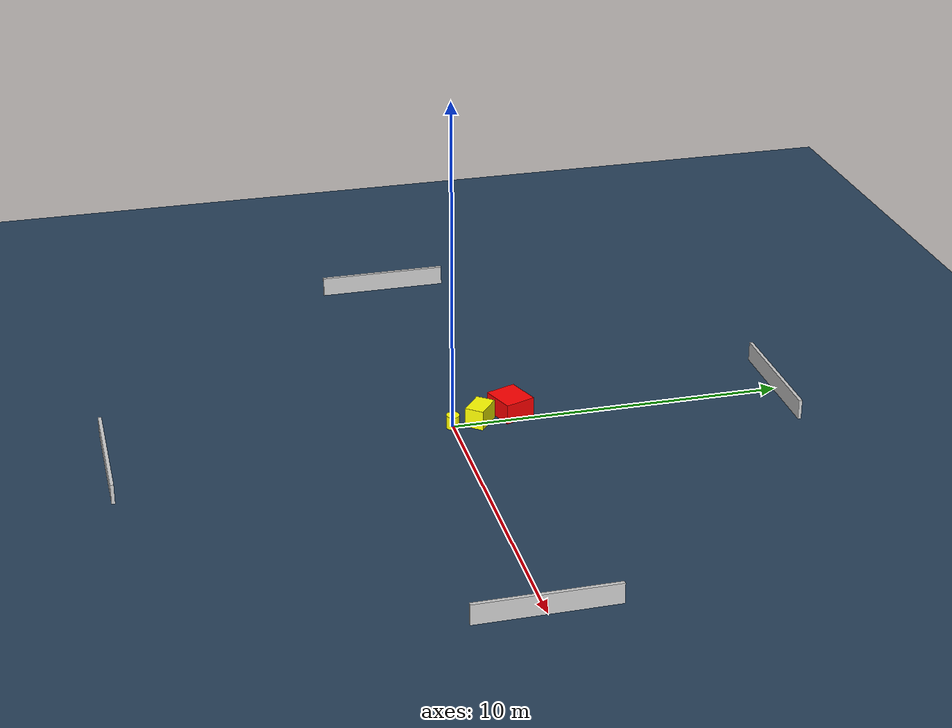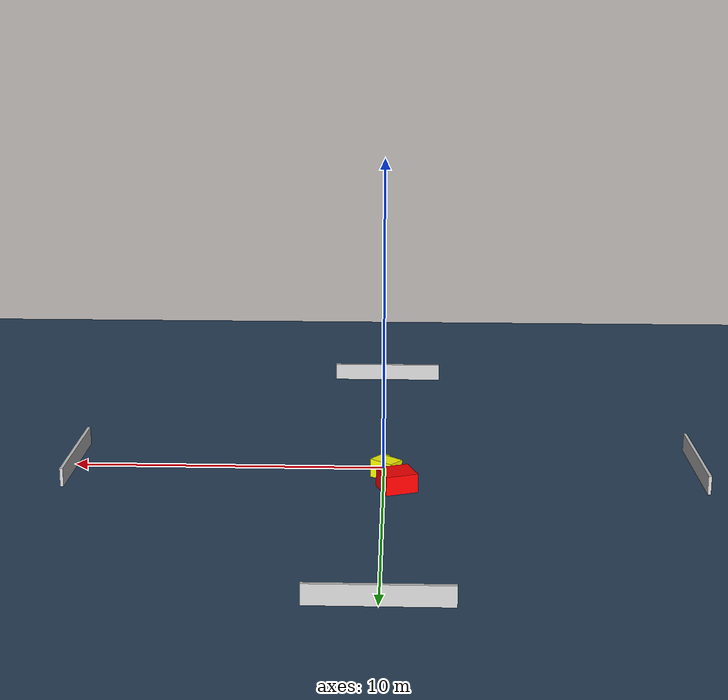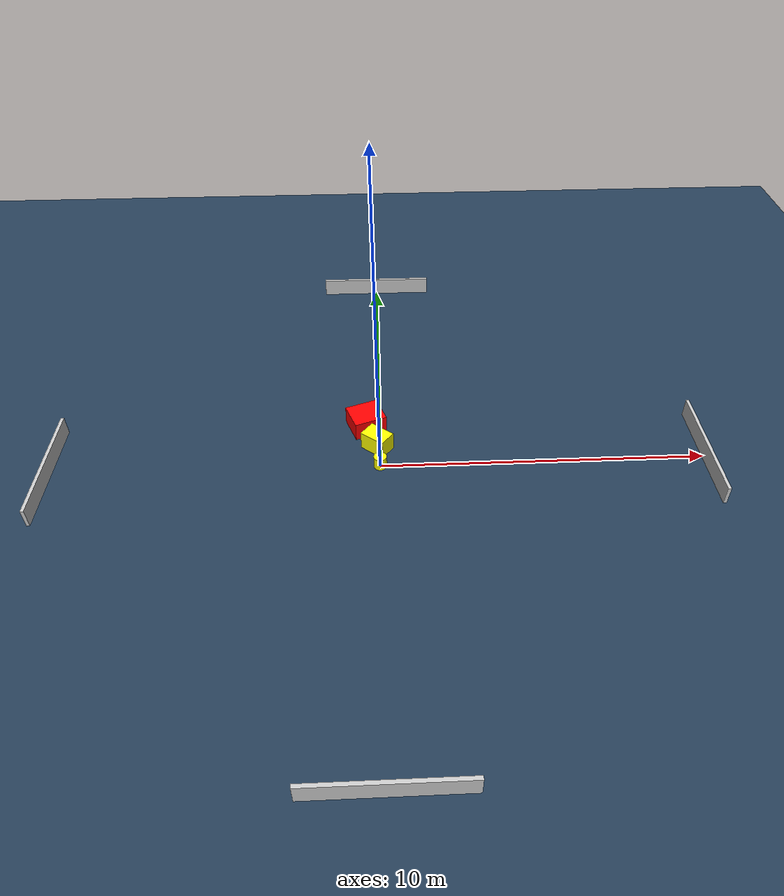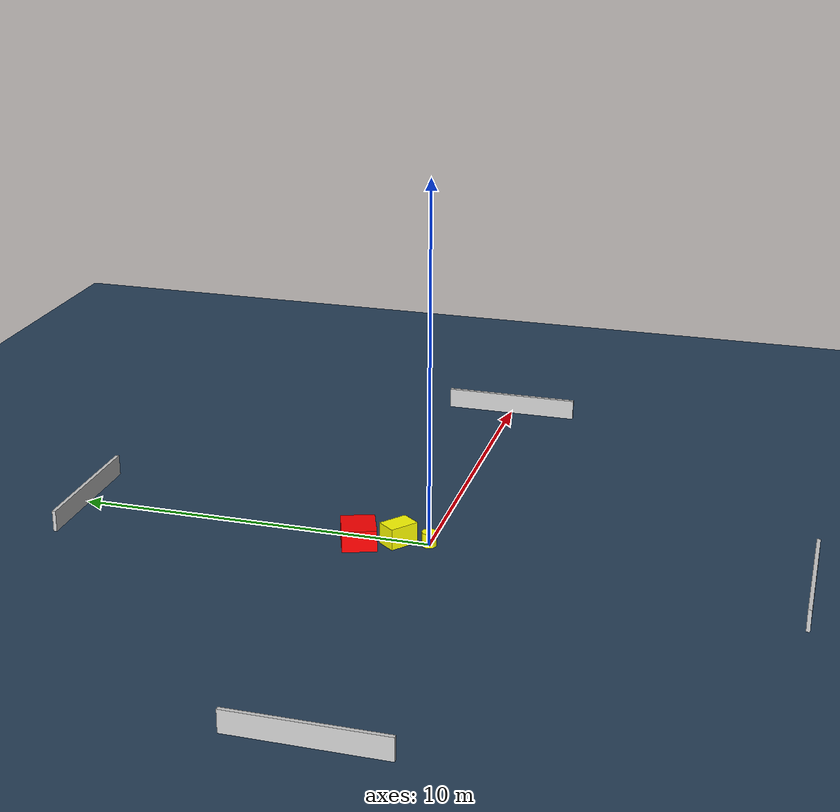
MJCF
<?xml version="1.0" ?>
<mujoco model="generated_environment">
  <option timestep="0.01" integrator="RK4" cone="elliptic"/>
  <default>
    <geom density="1"/>
  </default>
  <asset>
    <texture builtin="gradient" height="3072" name="skybox" rgb1="0.3 0.5 0.7" rgb2="0 0 0" type="skybox" width="512"/>
    <texture builtin="checker" height="300" name="groundplane" rgb1="0.2 0.3 0.4" rgb2="0.1 0.2 0.3" type="2d" width="300"/>
    <material name="groundplane" reflectance="0.2" texrepeat="5 5" texture="groundplane"/>
  </asset>
  <worldbody>
    <light dir="0 0 -1" directional="true" pos="0 0 1.5"/>
    <geom condim="3" friction="0.5 0.005 0.001" material="groundplane" name="floor" pos="0 0 0" size="0 0 0.05" type="plane"/>
    <body name="walls">
      <geom name="wall_1" condim="4" pos="-10.0 0.0 0.3" rgba="0.800000011920929 0.800000011920929 0.800000011920929 1.0" size="0.05 2.0 0.3" type="box"/>
      <geom name="wall_2" condim="4" pos="10.0 0.0 0.3" rgba="0.800000011920929 0.800000011920929 0.800000011920929 1.0" size="0.05 2.0 0.3" type="box"/>
      <geom name="wall_3" condim="4" pos="0.0 -10.0 0.3" rgba="0.800000011920929 0.800000011920929 0.800000011920929 1.0" size="2.0 0.05 0.3" type="box"/>
      <geom name="wall_4" condim="4" pos="0.0 10.0 0.3" rgba="0.800000011920929 0.800000011920929 0.800000011920929 1.0" size="2.0 0.05 0.3" type="box"/>
    </body>
    <body name="robot">
      <joint name="joint_x" type="slide" pos="0 0 0" axis="1 0 0"/>
      <joint name="joint_y" type="slide" pos="0 0 0" axis="0 1 0"/>
      <geom name="robot" type="cylinder" pos="0.0 0.0 0.2" size="0.2 0.2 0.0" mass="5.0" friction="1.0 0.005 0.0001" condim="4" rgba="1.0 1.0 0.0 1.0"/>
    </body>
    <body name="obstacle_1_movable">
      <geom name="obstacle_1_movable" condim="4" pos="-0.08239073233883651 0.830999857147794 0.3" euler="0 0 141.18754236290127" friction="0.0 0.005 0.001" rgba="1.0 1.0 0.0 1.0" size="0.41655303044342146 0.2847409084125843 0.3" type="box" mass="0.1"/>
      <joint type="free"/>
    </body>
    <body name="obstacle_2_static">
      <geom name="obstacle_2_static" condim="4" pos="-0.4241219100667227 1.8456756065847615 0.3" euler="0 0 200.31579967911804" friction="0.0 0.005 0.001" rgba="1.0 0.0 0.0 1.0" size="0.5200428366324267 0.47001816112101974 0.3" type="box"/>
    </body>
  </worldbody>
  <actuator>
    <motor name="actuator_x" joint="joint_x" gear="1" ctrlrange="-1 1"/>
    <motor name="actuator_y" joint="joint_y" gear="1" ctrlrange="-1 1"/>
  </actuator>
</mujoco>
